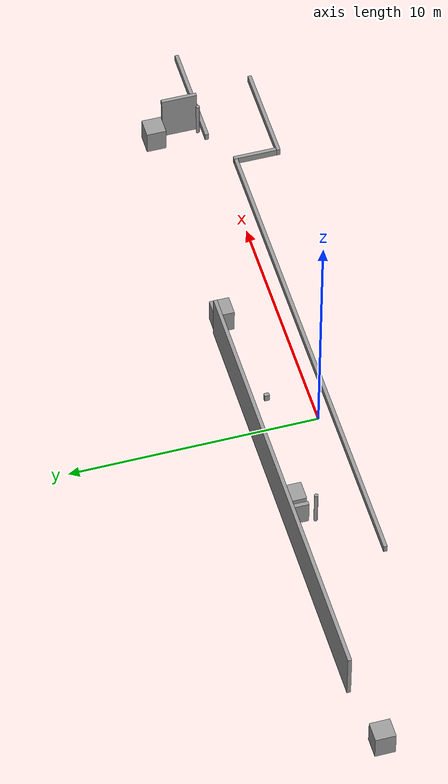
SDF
<sdf version="1.6">
 <model name="unit_box_map12">
  <link name="link">
   <pose>3.45997 -0.623895 0 0 -0 0</pose>
   <inertial>
    <mass>1</mass>
    <inertia>
     <ixx>0.166667</ixx>
     <ixy>0</ixy>
     <ixz>0</ixz>
     <iyy>0.166667</iyy>
     <iyz>0</iyz>
     <izz>0.166667</izz>
    </inertia>
   </inertial>
   <visual name="visual">
    <geometry><box><size>20.4 0.15 0.3</size></box></geometry>
    <material>
     <script><name>Gazebo/Grey</name><uri>file://media/materials/scripts/gazebo.material</uri></script>
     <ambient>0.3 0.3 0.3 1</ambient>
     <diffuse>0.7 0.7 0.7 1</diffuse>
     <specular>0.01 0.01 0.01 1</specular>
     <emissive>0 0 0 1</emissive>
     <shader type="vertex"><normal_map>__default__</normal_map></shader>
    </material>
   </visual>
   <collision name="collision">
    <geometry><box><size>20.4 0.15 0.3</size></box></geometry>
    <surface>
     <friction>
      <ode><mu>1</mu><mu2>1</mu2><fdir1>0 0 0</fdir1><slip1>0</slip1><slip2>0</slip2></ode>
      <torsional>
       <coefficient>1</coefficient>
       <patch_radius>0</patch_radius>
       <surface_radius>0</surface_radius>
       <use_patch_radius>1</use_patch_radius>
       <ode><slip>0</slip></ode>
      </torsional>
     </friction>
     <bounce><restitution_coefficient>0</restitution_coefficient><threshold>1e+06</threshold></bounce>
     <contact>
      <collide_without_contact>0</collide_without_contact>
      <collide_without_contact_bitmask>1</collide_without_contact_bitmask>
      <collide_bitmask>1</collide_bitmask>
      <ode>
       <soft_cfm>0</soft_cfm>
       <soft_erp>0.2</soft_erp>
       <kp>1e+13</kp>
       <kd>1</kd>
       <max_vel>0.01</max_vel>
       <min_depth>0</min_depth>
      </ode>
      <bullet>
       <split_impulse>1</split_impulse>
       <split_impulse_penetration_threshold>-0.01</split_impulse_penetration_threshold>
       <soft_cfm>0</soft_cfm>
       <soft_erp>0.2</soft_erp>
       <kp>1e+13</kp>
       <kd>1</kd>
      </bullet>
     </contact>
    </surface>
   </collision>
  </link>
  <link name="link_1">
   <pose>5.64225 2.27249 0.5 0 -0 0</pose>
   <inertial>
    <mass>1</mass>
    <inertia>
     <ixx>0.166667</ixx>
     <ixy>0</ixy>
     <ixz>0</ixz>
     <iyy>0.166667</iyy>
     <iyz>0</iyz>
     <izz>0.166667</izz>
    </inertia>
   </inertial>
   <visual name="visual">
    <geometry><box><size>0.8 0.8 1</size></box></geometry>
    <material>
     <lighting>1</lighting>
     <script><uri>file://media/materials/scripts/gazebo.material</uri><name>Gazebo/Grey</name></script>
     <ambient>0.3 0.3 0.3 1</ambient>
     <diffuse>0.7 0.7 0.7 1</diffuse>
     <specular>0.01 0.01 0.01 1</specular>
     <emissive>0 0 0 1</emissive>
     <shader type="vertex"><normal_map>__default__</normal_map></shader>
    </material>
   </visual>
   <collision name="collision">
    <geometry><box><size>0.8 0.8 1</size></box></geometry>
    <surface>
     <friction>
      <ode><mu>1</mu><mu2>1</mu2><fdir1>0 0 0</fdir1><slip1>0</slip1><slip2>0</slip2></ode>
      <torsional>
       <coefficient>1</coefficient>
       <patch_radius>0</patch_radius>
       <surface_radius>0</surface_radius>
       <use_patch_radius>1</use_patch_radius>
       <ode><slip>0</slip></ode>
      </torsional>
     </friction>
     <bounce><restitution_coefficient>0</restitution_coefficient><threshold>1e+06</threshold></bounce>
     <contact>
      <collide_without_contact>0</collide_without_contact>
      <collide_without_contact_bitmask>1</collide_without_contact_bitmask>
      <collide_bitmask>1</collide_bitmask>
      <ode>
       <soft_cfm>0</soft_cfm>
       <soft_erp>0.2</soft_erp>
       <kp>1e+13</kp>
       <kd>1</kd>
       <max_vel>0.01</max_vel>
       <min_depth>0</min_depth>
      </ode>
      <bullet>
       <split_impulse>1</split_impulse>
       <split_impulse_penetration_threshold>-0.01</split_impulse_penetration_threshold>
       <soft_cfm>0</soft_cfm>
       <soft_erp>0.2</soft_erp>
       <kp>1e+13</kp>
       <kd>1</kd>
      </bullet>
     </contact>
    </surface>
   </collision>
  </link>
  <link name="link_1_clone">
   <pose>-3.92858 2.1759 0.5 0 -0 0</pose>
   <inertial>
    <mass>1</mass>
    <inertia>
     <ixx>0.166667</ixx>
     <ixy>0</ixy>
     <ixz>0</ixz>
     <iyy>0.166667</iyy>
     <iyz>0</iyz>
     <izz>0.166667</izz>
    </inertia>
   </inertial>
   <visual name="visual">
    <geometry><box><size>0.8 0.8 1</size></box></geometry>
    <material>
     <lighting>1</lighting>
     <script><uri>file://media/materials/scripts/gazebo.material</uri><name>Gazebo/Grey</name></script>
     <ambient>0.3 0.3 0.3 1</ambient>
     <diffuse>0.7 0.7 0.7 1</diffuse>
     <specular>0.01 0.01 0.01 1</specular>
     <emissive>0 0 0 1</emissive>
     <shader type="vertex"><normal_map>__default__</normal_map></shader>
    </material>
   </visual>
   <collision name="collision">
    <geometry><box><size>0.8 0.8 1</size></box></geometry>
    <surface>
     <friction>
      <ode><mu>1</mu><mu2>1</mu2><fdir1>0 0 0</fdir1><slip1>0</slip1><slip2>0</slip2></ode>
      <torsional>
       <coefficient>1</coefficient>
       <patch_radius>0</patch_radius>
       <surface_radius>0</surface_radius>
       <use_patch_radius>1</use_patch_radius>
       <ode><slip>0</slip></ode>
      </torsional>
     </friction>
     <bounce><restitution_coefficient>0</restitution_coefficient><threshold>1e+06</threshold></bounce>
     <contact>
      <collide_without_contact>0</collide_without_contact>
      <collide_without_contact_bitmask>1</collide_without_contact_bitmask>
      <collide_bitmask>1</collide_bitmask>
      <ode>
       <soft_cfm>0</soft_cfm>
       <soft_erp>0.2</soft_erp>
       <kp>1e+13</kp>
       <kd>1</kd>
       <max_vel>0.01</max_vel>
       <min_depth>0</min_depth>
      </ode>
      <bullet>
       <split_impulse>1</split_impulse>
       <split_impulse_penetration_threshold>-0.01</split_impulse_penetration_threshold>
       <soft_cfm>0</soft_cfm>
       <soft_erp>0.2</soft_erp>
       <kp>1e+13</kp>
       <kd>1</kd>
      </bullet>
     </contact>
    </surface>
   </collision>
  </link>
  <link name="link_1_clone_0_clone">
   <pose>15.5381 2.27815 0.5 0 -0 0</pose>
   <inertial>
    <mass>1</mass>
    <inertia>
     <ixx>0.166667</ixx>
     <ixy>0</ixy>
     <ixz>0</ixz>
     <iyy>0.166667</iyy>
     <iyz>0</iyz>
     <izz>0.166667</izz>
    </inertia>
   </inertial>
   <visual name="visual">
    <geometry><box><size>0.8 0.8 1</size></box></geometry>
    <material>
     <lighting>1</lighting>
     <script><uri>file://media/materials/scripts/gazebo.material</uri><name>Gazebo/Grey</name></script>
     <ambient>0.3 0.3 0.3 1</ambient>
     <diffuse>0.7 0.7 0.7 1</diffuse>
     <specular>0.01 0.01 0.01 1</specular>
     <emissive>0 0 0 1</emissive>
     <shader type="vertex"><normal_map>__default__</normal_map></shader>
    </material>
   </visual>
   <collision name="collision">
    <geometry><box><size>0.8 0.8 1</size></box></geometry>
    <surface>
     <friction>
      <ode><mu>1</mu><mu2>1</mu2><fdir1>0 0 0</fdir1><slip1>0</slip1><slip2>0</slip2></ode>
      <torsional>
       <coefficient>1</coefficient>
       <patch_radius>0</patch_radius>
       <surface_radius>0</surface_radius>
       <use_patch_radius>1</use_patch_radius>
       <ode><slip>0</slip></ode>
      </torsional>
     </friction>
     <bounce><restitution_coefficient>0</restitution_coefficient><threshold>1e+06</threshold></bounce>
     <contact>
      <collide_without_contact>0</collide_without_contact>
      <collide_without_contact_bitmask>1</collide_without_contact_bitmask>
      <collide_bitmask>1</collide_bitmask>
      <ode>
       <soft_cfm>0</soft_cfm>
       <soft_erp>0.2</soft_erp>
       <kp>1e+13</kp>
       <kd>1</kd>
       <max_vel>0.01</max_vel>
       <min_depth>0</min_depth>
      </ode>
      <bullet>
       <split_impulse>1</split_impulse>
       <split_impulse_penetration_threshold>-0.01</split_impulse_penetration_threshold>
       <soft_cfm>0</soft_cfm>
       <soft_erp>0.2</soft_erp>
       <kp>1e+13</kp>
       <kd>1</kd>
      </bullet>
     </contact>
    </surface>
   </collision>
  </link>
  <link name="link_1_clone_clone">
   <pose>-4.56641 2.17851 0.5 0 -0 0</pose>
   <inertial>
    <mass>0.216254</mass>
    <inertia>
     <ixx>0.0360423</ixx>
     <ixy>0</ixy>
     <ixz>0</ixz>
     <iyy>0.0188639</iyy>
     <iyz>0</iyz>
     <izz>0.0188639</izz>
    </inertia>
   </inertial>
   <visual name="visual">
    <geometry><box><size>0.173004 0.8 1</size></box></geometry>
    <material>
     <lighting>1</lighting>
     <script><uri>file://media/materials/scripts/gazebo.material</uri><name>Gazebo/Grey</name></script>
     <ambient>0.3 0.3 0.3 1</ambient>
     <diffuse>0.7 0.7 0.7 1</diffuse>
     <specular>0.01 0.01 0.01 1</specular>
     <emissive>0 0 0 1</emissive>
     <shader type="vertex"><normal_map>__default__</normal_map></shader>
    </material>
   </visual>
   <collision name="collision">
    <geometry><box><size>0.173004 0.8 1</size></box></geometry>
    <surface>
     <friction>
      <ode><mu>1</mu><mu2>1</mu2><fdir1>0 0 0</fdir1><slip1>0</slip1><slip2>0</slip2></ode>
      <torsional>
       <coefficient>1</coefficient>
       <patch_radius>0</patch_radius>
       <surface_radius>0</surface_radius>
       <use_patch_radius>1</use_patch_radius>
       <ode><slip>0</slip></ode>
      </torsional>
     </friction>
     <bounce><restitution_coefficient>0</restitution_coefficient><threshold>1e+06</threshold></bounce>
     <contact>
      <collide_without_contact>0</collide_without_contact>
      <collide_without_contact_bitmask>1</collide_without_contact_bitmask>
      <collide_bitmask>1</collide_bitmask>
      <ode>
       <soft_cfm>0</soft_cfm>
       <soft_erp>0.2</soft_erp>
       <kp>1e+13</kp>
       <kd>1</kd>
       <max_vel>0.01</max_vel>
       <min_depth>0</min_depth>
      </ode>
      <bullet>
       <split_impulse>1</split_impulse>
       <split_impulse_penetration_threshold>-0.01</split_impulse_penetration_threshold>
       <soft_cfm>0</soft_cfm>
       <soft_erp>0.2</soft_erp>
       <kp>1e+13</kp>
       <kd>1</kd>
      </bullet>
     </contact>
    </surface>
   </collision>
  </link>
  <link name="link_1_clone_clone_0">
   <pose>-15.389 2.17694 0.5 0 -0 0</pose>
   <inertial>
    <mass>1</mass>
    <inertia>
     <ixx>0.166667</ixx>
     <ixy>0</ixy>
     <ixz>0</ixz>
     <iyy>0.166667</iyy>
     <iyz>0</iyz>
     <izz>0.166667</izz>
    </inertia>
   </inertial>
   <visual name="visual">
    <geometry><box><size>0.8 0.8 1</size></box></geometry>
    <material>
     <lighting>1</lighting>
     <script><uri>file://media/materials/scripts/gazebo.material</uri><name>Gazebo/Grey</name></script>
     <ambient>0.3 0.3 0.3 1</ambient>
     <diffuse>0.7 0.7 0.7 1</diffuse>
     <specular>0.01 0.01 0.01 1</specular>
     <emissive>0 0 0 1</emissive>
     <shader type="vertex"><normal_map>__default__</normal_map></shader>
    </material>
   </visual>
   <collision name="collision">
    <geometry><box><size>0.8 0.8 1</size></box></geometry>
    <surface>
     <friction>
      <ode><mu>1</mu><mu2>1</mu2><fdir1>0 0 0</fdir1><slip1>0</slip1><slip2>0</slip2></ode>
      <torsional>
       <coefficient>1</coefficient>
       <patch_radius>0</patch_radius>
       <surface_radius>0</surface_radius>
       <use_patch_radius>1</use_patch_radius>
       <ode><slip>0</slip></ode>
      </torsional>
     </friction>
     <bounce><restitution_coefficient>0</restitution_coefficient><threshold>1e+06</threshold></bounce>
     <contact>
      <collide_without_contact>0</collide_without_contact>
      <collide_without_contact_bitmask>1</collide_without_contact_bitmask>
      <collide_bitmask>1</collide_bitmask>
      <ode>
       <soft_cfm>0</soft_cfm>
       <soft_erp>0.2</soft_erp>
       <kp>1e+13</kp>
       <kd>1</kd>
       <max_vel>0.01</max_vel>
       <min_depth>0</min_depth>
      </ode>
      <bullet>
       <split_impulse>1</split_impulse>
       <split_impulse_penetration_threshold>-0.01</split_impulse_penetration_threshold>
       <soft_cfm>0</soft_cfm>
       <soft_erp>0.2</soft_erp>
       <kp>1e+13</kp>
       <kd>1</kd>
      </bullet>
     </contact>
    </surface>
   </collision>
  </link>
  <link name="link_2">
   <pose>-4.67409 1.51565 0.7539 0 -0 0</pose>
   <inertial>
    <mass>1</mass>
    <inertia><ixx>0.145833</ixx><ixy>0</ixy><ixz>0</ixz><iyy>0.145833</iyy><iyz>0</iyz><izz>0.125</izz></inertia>
   </inertial>
   <visual name="visual">
    <geometry><cylinder><radius>0.075</radius><length>1.5</length></cylinder></geometry>
    <material>
     <lighting>1</lighting>
     <script><uri>file://media/materials/scripts/gazebo.material</uri><name>Gazebo/Grey</name></script>
     <ambient>0.3 0.3 0.3 1</ambient>
     <diffuse>0.7 0.7 0.7 1</diffuse>
     <specular>0.01 0.01 0.01 1</specular>
     <emissive>0 0 0 1</emissive>
     <shader type="vertex"><normal_map>__default__</normal_map></shader>
    </material>
   </visual>
   <collision name="collision">
    <geometry><cylinder><radius>0.075</radius><length>1.5</length></cylinder></geometry>
    <surface>
     <friction>
      <ode><mu>1</mu><mu2>1</mu2><fdir1>0 0 0</fdir1><slip1>0</slip1><slip2>0</slip2></ode>
      <torsional>
       <coefficient>1</coefficient>
       <patch_radius>0</patch_radius>
       <surface_radius>0</surface_radius>
       <use_patch_radius>1</use_patch_radius>
       <ode><slip>0</slip></ode>
      </torsional>
     </friction>
     <bounce><restitution_coefficient>0</restitution_coefficient><threshold>1e+06</threshold></bounce>
     <contact>
      <collide_without_contact>0</collide_without_contact>
      <collide_without_contact_bitmask>1</collide_without_contact_bitmask>
      <collide_bitmask>1</collide_bitmask>
      <ode>
       <soft_cfm>0</soft_cfm>
       <soft_erp>0.2</soft_erp>
       <kp>1e+13</kp>
       <kd>1</kd>
       <max_vel>0.01</max_vel>
       <min_depth>0</min_depth>
      </ode>
      <bullet>
       <split_impulse>1</split_impulse>
       <split_impulse_penetration_threshold>-0.01</split_impulse_penetration_threshold>
       <soft_cfm>0</soft_cfm>
       <soft_erp>0.2</soft_erp>
       <kp>1e+13</kp>
       <kd>1</kd>
      </bullet>
     </contact>
    </surface>
   </collision>
  </link>
  <link name="link_2_clone_clone">
   <pose>16.0812 0.409793 0.7539 0 -0 0</pose>
   <inertial>
    <mass>1</mass>
    <inertia><ixx>0.145833</ixx><ixy>0</ixy><ixz>0</ixz><iyy>0.145833</iyy><iyz>0</iyz><izz>0.125</izz></inertia>
   </inertial>
   <visual name="visual">
    <geometry><cylinder><radius>0.075</radius><length>1.5</length></cylinder></geometry>
    <material>
     <lighting>1</lighting>
     <script><uri>file://media/materials/scripts/gazebo.material</uri><name>Gazebo/Grey</name></script>
     <ambient>0.3 0.3 0.3 1</ambient>
     <diffuse>0.7 0.7 0.7 1</diffuse>
     <specular>0.01 0.01 0.01 1</specular>
     <emissive>0 0 0 1</emissive>
     <shader type="vertex"><normal_map>__default__</normal_map></shader>
    </material>
   </visual>
   <collision name="collision">
    <geometry><cylinder><radius>0.075</radius><length>1.5</length></cylinder></geometry>
    <surface>
     <friction>
      <ode><mu>1</mu><mu2>1</mu2><fdir1>0 0 0</fdir1><slip1>0</slip1><slip2>0</slip2></ode>
      <torsional>
       <coefficient>1</coefficient>
       <patch_radius>0</patch_radius>
       <surface_radius>0</surface_radius>
       <use_patch_radius>1</use_patch_radius>
       <ode><slip>0</slip></ode>
      </torsional>
     </friction>
     <bounce><restitution_coefficient>0</restitution_coefficient><threshold>1e+06</threshold></bounce>
     <contact>
      <collide_without_contact>0</collide_without_contact>
      <collide_without_contact_bitmask>1</collide_without_contact_bitmask>
      <collide_bitmask>1</collide_bitmask>
      <ode>
       <soft_cfm>0</soft_cfm>
       <soft_erp>0.2</soft_erp>
       <kp>1e+13</kp>
       <kd>1</kd>
       <max_vel>0.01</max_vel>
       <min_depth>0</min_depth>
      </ode>
      <bullet>
       <split_impulse>1</split_impulse>
       <split_impulse_penetration_threshold>-0.01</split_impulse_penetration_threshold>
       <soft_cfm>0</soft_cfm>
       <soft_erp>0.2</soft_erp>
       <kp>1e+13</kp>
       <kd>1</kd>
      </bullet>
     </contact>
    </surface>
   </collision>
  </link>
  <link name="link_2_clone_clone_0">
   <pose>15.6338 0.415175 0.7539 0 -0 0</pose>
   <inertial>
    <mass>1</mass>
    <inertia><ixx>0.145833</ixx><ixy>0</ixy><ixz>0</ixz><iyy>0.145833</iyy><iyz>0</iyz><izz>0.125</izz></inertia>
   </inertial>
   <visual name="visual">
    <geometry><cylinder><radius>0.075</radius><length>1.5</length></cylinder></geometry>
    <material>
     <lighting>1</lighting>
     <script><uri>file://media/materials/scripts/gazebo.material</uri><name>Gazebo/Grey</name></script>
     <ambient>0.3 0.3 0.3 1</ambient>
     <diffuse>0.7 0.7 0.7 1</diffuse>
     <specular>0.01 0.01 0.01 1</specular>
     <emissive>0 0 0 1</emissive>
     <shader type="vertex"><normal_map>__default__</normal_map></shader>
    </material>
   </visual>
   <collision name="collision">
    <geometry><cylinder><radius>0.075</radius><length>1.5</length></cylinder></geometry>
    <surface>
     <friction>
      <ode><mu>1</mu><mu2>1</mu2><fdir1>0 0 0</fdir1><slip1>0</slip1><slip2>0</slip2></ode>
      <torsional>
       <coefficient>1</coefficient>
       <patch_radius>0</patch_radius>
       <surface_radius>0</surface_radius>
       <use_patch_radius>1</use_patch_radius>
       <ode><slip>0</slip></ode>
      </torsional>
     </friction>
     <bounce><restitution_coefficient>0</restitution_coefficient><threshold>1e+06</threshold></bounce>
     <contact>
      <collide_without_contact>0</collide_without_contact>
      <collide_without_contact_bitmask>1</collide_without_contact_bitmask>
      <collide_bitmask>1</collide_bitmask>
      <ode>
       <soft_cfm>0</soft_cfm>
       <soft_erp>0.2</soft_erp>
       <kp>1e+13</kp>
       <kd>1</kd>
       <max_vel>0.01</max_vel>
       <min_depth>0</min_depth>
      </ode>
      <bullet>
       <split_impulse>1</split_impulse>
       <split_impulse_penetration_threshold>-0.01</split_impulse_penetration_threshold>
       <soft_cfm>0</soft_cfm>
       <soft_erp>0.2</soft_erp>
       <kp>1e+13</kp>
       <kd>1</kd>
      </bullet>
     </contact>
    </surface>
   </collision>
  </link>
  <link name="link_clone">
   <pose>-3.76019 2.65371 0.997263 0 -0 0</pose>
   <inertial>
    <mass>1</mass>
    <inertia>
     <ixx>0.166667</ixx>
     <ixy>0</ixy>
     <ixz>0</ixz>
     <iyy>0.166667</iyy>
     <iyz>0</iyz>
     <izz>0.166667</izz>
    </inertia>
   </inertial>
   <visual name="visual">
    <geometry><box><size>18 0.15 2</size></box></geometry>
    <material>
     <script><name>Gazebo/Grey</name><uri>file://media/materials/scripts/gazebo.material</uri></script>
     <ambient>0.3 0.3 0.3 1</ambient>
     <diffuse>0.7 0.7 0.7 1</diffuse>
     <specular>0.01 0.01 0.01 1</specular>
     <emissive>0 0 0 1</emissive>
     <shader type="vertex"><normal_map>__default__</normal_map></shader>
    </material>
   </visual>
   <collision name="collision">
    <geometry><box><size>18 0.15 2</size></box></geometry>
    <surface>
     <friction>
      <ode><mu>1</mu><mu2>1</mu2><fdir1>0 0 0</fdir1><slip1>0</slip1><slip2>0</slip2></ode>
      <torsional>
       <coefficient>1</coefficient>
       <patch_radius>0</patch_radius>
       <surface_radius>0</surface_radius>
       <use_patch_radius>1</use_patch_radius>
       <ode><slip>0</slip></ode>
      </torsional>
     </friction>
     <bounce><restitution_coefficient>0</restitution_coefficient><threshold>1e+06</threshold></bounce>
     <contact>
      <collide_without_contact>0</collide_without_contact>
      <collide_without_contact_bitmask>1</collide_without_contact_bitmask>
      <collide_bitmask>1</collide_bitmask>
      <ode>
       <soft_cfm>0</soft_cfm>
       <soft_erp>0.2</soft_erp>
       <kp>1e+13</kp>
       <kd>1</kd>
       <max_vel>0.01</max_vel>
       <min_depth>0</min_depth>
      </ode>
      <bullet>
       <split_impulse>1</split_impulse>
       <split_impulse_penetration_threshold>-0.01</split_impulse_penetration_threshold>
       <soft_cfm>0</soft_cfm>
       <soft_erp>0.2</soft_erp>
       <kp>1e+13</kp>
       <kd>1</kd>
      </bullet>
     </contact>
    </surface>
   </collision>
  </link>
  <link name="link_clone_0_clone">
   <pose>1.60516 1.62127 0 0 -0 1.5707</pose>
   <inertial>
    <mass>1</mass>
    <inertia>
     <ixx>0.166667</ixx>
     <ixy>0</ixy>
     <ixz>0</ixz>
     <iyy>0.166667</iyy>
     <iyz>0</iyz>
     <izz>0.166667</izz>
    </inertia>
   </inertial>
   <visual name="visual">
    <geometry><box><size>0.2 0.15 0.3</size></box></geometry>
    <material>
     <script><name>Gazebo/Grey</name><uri>file://media/materials/scripts/gazebo.material</uri></script>
     <ambient>0.3 0.3 0.3 1</ambient>
     <diffuse>0.7 0.7 0.7 1</diffuse>
     <specular>0.01 0.01 0.01 1</specular>
     <emissive>0 0 0 1</emissive>
     <shader type="vertex"><normal_map>__default__</normal_map></shader>
    </material>
   </visual>
   <collision name="collision">
    <geometry><box><size>0.2 0.15 0.3</size></box></geometry>
    <surface>
     <friction>
      <ode><mu>1</mu><mu2>1</mu2><fdir1>0 0 0</fdir1><slip1>0</slip1><slip2>0</slip2></ode>
      <torsional>
       <coefficient>1</coefficient>
       <patch_radius>0</patch_radius>
       <surface_radius>0</surface_radius>
       <use_patch_radius>1</use_patch_radius>
       <ode><slip>0</slip></ode>
      </torsional>
     </friction>
     <bounce><restitution_coefficient>0</restitution_coefficient><threshold>1e+06</threshold></bounce>
     <contact>
      <collide_without_contact>0</collide_without_contact>
      <collide_without_contact_bitmask>1</collide_without_contact_bitmask>
      <collide_bitmask>1</collide_bitmask>
      <ode>
       <soft_cfm>0</soft_cfm>
       <soft_erp>0.2</soft_erp>
       <kp>1e+13</kp>
       <kd>1</kd>
       <max_vel>0.01</max_vel>
       <min_depth>0</min_depth>
      </ode>
      <bullet>
       <split_impulse>1</split_impulse>
       <split_impulse_penetration_threshold>-0.01</split_impulse_penetration_threshold>
       <soft_cfm>0</soft_cfm>
       <soft_erp>0.2</soft_erp>
       <kp>1e+13</kp>
       <kd>1</kd>
      </bullet>
     </contact>
    </surface>
   </collision>
  </link>
  <link name="link_clone_0_clone_0_clone_clone">
   <pose>15.7693 -2.40821 0 0 -0 0</pose>
   <inertial>
    <mass>1</mass>
    <inertia>
     <ixx>0.166667</ixx>
     <ixy>0</ixy>
     <ixz>0</ixz>
     <iyy>0.166667</iyy>
     <iyz>0</iyz>
     <izz>0.166667</izz>
    </inertia>
   </inertial>
   <visual name="visual">
    <geometry><box><size>4.21 0.15 0.3</size></box></geometry>
    <material>
     <script><name>Gazebo/Grey</name><uri>file://media/materials/scripts/gazebo.material</uri></script>
     <ambient>0.3 0.3 0.3 1</ambient>
     <diffuse>0.7 0.7 0.7 1</diffuse>
     <specular>0.01 0.01 0.01 1</specular>
     <emissive>0 0 0 1</emissive>
     <shader type="vertex"><normal_map>__default__</normal_map></shader>
    </material>
   </visual>
   <collision name="collision">
    <geometry><box><size>4.21 0.15 0.3</size></box></geometry>
    <surface>
     <friction>
      <ode><mu>1</mu><mu2>1</mu2><fdir1>0 0 0</fdir1><slip1>0</slip1><slip2>0</slip2></ode>
      <torsional>
       <coefficient>1</coefficient>
       <patch_radius>0</patch_radius>
       <surface_radius>0</surface_radius>
       <use_patch_radius>1</use_patch_radius>
       <ode><slip>0</slip></ode>
      </torsional>
     </friction>
     <bounce><restitution_coefficient>0</restitution_coefficient><threshold>1e+06</threshold></bounce>
     <contact>
      <collide_without_contact>0</collide_without_contact>
      <collide_without_contact_bitmask>1</collide_without_contact_bitmask>
      <collide_bitmask>1</collide_bitmask>
      <ode>
       <soft_cfm>0</soft_cfm>
       <soft_erp>0.2</soft_erp>
       <kp>1e+13</kp>
       <kd>1</kd>
       <max_vel>0.01</max_vel>
       <min_depth>0</min_depth>
      </ode>
      <bullet>
       <split_impulse>1</split_impulse>
       <split_impulse_penetration_threshold>-0.01</split_impulse_penetration_threshold>
       <soft_cfm>0</soft_cfm>
       <soft_erp>0.2</soft_erp>
       <kp>1e+13</kp>
       <kd>1</kd>
      </bullet>
     </contact>
    </surface>
   </collision>
  </link>
  <link name="link_clone_0_clone_0_clone_clone_clone">
   <pose>17.5173 0.14167 0 0 -0 0</pose>
   <inertial>
    <mass>0.716393</mass>
    <inertia>
     <ixx>0.119399</ixx>
     <ixy>0</ixy>
     <ixz>0</ixz>
     <iyy>0.0903386</iyy>
     <iyz>0</iyz>
     <izz>0.0903386</izz>
    </inertia>
   </inertial>
   <visual name="visual">
    <geometry><box><size>4.53477 0.15 0.3</size></box></geometry>
    <material>
     <script><name>Gazebo/Grey</name><uri>file://media/materials/scripts/gazebo.material</uri></script>
     <ambient>0.3 0.3 0.3 1</ambient>
     <diffuse>0.7 0.7 0.7 1</diffuse>
     <specular>0.01 0.01 0.01 1</specular>
     <emissive>0 0 0 1</emissive>
     <shader type="vertex"><normal_map>__default__</normal_map></shader>
    </material>
   </visual>
   <collision name="collision">
    <geometry><box><size>4.53477 0.15 0.3</size></box></geometry>
    <surface>
     <friction>
      <ode><mu>1</mu><mu2>1</mu2><fdir1>0 0 0</fdir1><slip1>0</slip1><slip2>0</slip2></ode>
      <torsional>
       <coefficient>1</coefficient>
       <patch_radius>0</patch_radius>
       <surface_radius>0</surface_radius>
       <use_patch_radius>1</use_patch_radius>
       <ode><slip>0</slip></ode>
      </torsional>
     </friction>
     <bounce><restitution_coefficient>0</restitution_coefficient><threshold>1e+06</threshold></bounce>
     <contact>
      <collide_without_contact>0</collide_without_contact>
      <collide_without_contact_bitmask>1</collide_without_contact_bitmask>
      <collide_bitmask>1</collide_bitmask>
      <ode>
       <soft_cfm>0</soft_cfm>
       <soft_erp>0.2</soft_erp>
       <kp>1e+13</kp>
       <kd>1</kd>
       <max_vel>0.01</max_vel>
       <min_depth>0</min_depth>
      </ode>
      <bullet>
       <split_impulse>1</split_impulse>
       <split_impulse_penetration_threshold>-0.01</split_impulse_penetration_threshold>
       <soft_cfm>0</soft_cfm>
       <soft_erp>0.2</soft_erp>
       <kp>1e+13</kp>
       <kd>1</kd>
      </bullet>
     </contact>
    </surface>
   </collision>
  </link>
  <link name="link_clone_0_clone_clone_0">
   <pose>15.8605 1.14267 1.00786 0 -0 1.5707</pose>
   <inertial>
    <mass>1</mass>
    <inertia>
     <ixx>0.166667</ixx>
     <ixy>0</ixy>
     <ixz>0</ixz>
     <iyy>0.166667</iyy>
     <iyz>0</iyz>
     <izz>0.166667</izz>
    </inertia>
   </inertial>
   <visual name="visual">
    <geometry><box><size>1.45 0.15 2</size></box></geometry>
    <material>
     <script><name>Gazebo/Grey</name><uri>file://media/materials/scripts/gazebo.material</uri></script>
     <ambient>0.3 0.3 0.3 1</ambient>
     <diffuse>0.7 0.7 0.7 1</diffuse>
     <specular>0.01 0.01 0.01 1</specular>
     <emissive>0 0 0 1</emissive>
     <shader type="vertex"><normal_map>__default__</normal_map></shader>
    </material>
   </visual>
   <collision name="collision">
    <geometry><box><size>1.45 0.15 2</size></box></geometry>
    <surface>
     <friction>
      <ode><mu>1</mu><mu2>1</mu2><fdir1>0 0 0</fdir1><slip1>0</slip1><slip2>0</slip2></ode>
      <torsional>
       <coefficient>1</coefficient>
       <patch_radius>0</patch_radius>
       <surface_radius>0</surface_radius>
       <use_patch_radius>1</use_patch_radius>
       <ode><slip>0</slip></ode>
      </torsional>
     </friction>
     <bounce><restitution_coefficient>0</restitution_coefficient><threshold>1e+06</threshold></bounce>
     <contact>
      <collide_without_contact>0</collide_without_contact>
      <collide_without_contact_bitmask>1</collide_without_contact_bitmask>
      <collide_bitmask>1</collide_bitmask>
      <ode>
       <soft_cfm>0</soft_cfm>
       <soft_erp>0.2</soft_erp>
       <kp>1e+13</kp>
       <kd>1</kd>
       <max_vel>0.01</max_vel>
       <min_depth>0</min_depth>
      </ode>
      <bullet>
       <split_impulse>1</split_impulse>
       <split_impulse_penetration_threshold>-0.01</split_impulse_penetration_threshold>
       <soft_cfm>0</soft_cfm>
       <soft_erp>0.2</soft_erp>
       <kp>1e+13</kp>
       <kd>1</kd>
      </bullet>
     </contact>
    </surface>
   </collision>
  </link>
  <link name="link_clone_0_clone_clone_0_clone">
   <pose>13.7445 -1.43771 0 0 -0 1.5707</pose>
   <inertial>
    <mass>1</mass>
    <inertia>
     <ixx>0.166667</ixx>
     <ixy>0</ixy>
     <ixz>0</ixz>
     <iyy>0.166667</iyy>
     <iyz>0</iyz>
     <izz>0.166667</izz>
    </inertia>
   </inertial>
   <visual name="visual">
    <geometry><box><size>1.78 0.15 0.3</size></box></geometry>
    <material>
     <script><name>Gazebo/Grey</name><uri>file://media/materials/scripts/gazebo.material</uri></script>
     <ambient>0.3 0.3 0.3 1</ambient>
     <diffuse>0.7 0.7 0.7 1</diffuse>
     <specular>0.01 0.01 0.01 1</specular>
     <emissive>0 0 0 1</emissive>
     <shader type="vertex"><normal_map>__default__</normal_map></shader>
    </material>
   </visual>
   <collision name="collision">
    <geometry><box><size>1.78 0.15 0.3</size></box></geometry>
    <surface>
     <friction>
      <ode><mu>1</mu><mu2>1</mu2><fdir1>0 0 0</fdir1><slip1>0</slip1><slip2>0</slip2></ode>
      <torsional>
       <coefficient>1</coefficient>
       <patch_radius>0</patch_radius>
       <surface_radius>0</surface_radius>
       <use_patch_radius>1</use_patch_radius>
       <ode><slip>0</slip></ode>
      </torsional>
     </friction>
     <bounce><restitution_coefficient>0</restitution_coefficient><threshold>1e+06</threshold></bounce>
     <contact>
      <collide_without_contact>0</collide_without_contact>
      <collide_without_contact_bitmask>1</collide_without_contact_bitmask>
      <collide_bitmask>1</collide_bitmask>
      <ode>
       <soft_cfm>0</soft_cfm>
       <soft_erp>0.2</soft_erp>
       <kp>1e+13</kp>
       <kd>1</kd>
       <max_vel>0.01</max_vel>
       <min_depth>0</min_depth>
      </ode>
      <bullet>
       <split_impulse>1</split_impulse>
       <split_impulse_penetration_threshold>-0.01</split_impulse_penetration_threshold>
       <soft_cfm>0</soft_cfm>
       <soft_erp>0.2</soft_erp>
       <kp>1e+13</kp>
       <kd>1</kd>
      </bullet>
     </contact>
    </surface>
   </collision>
  </link>
  <static>1</static>
  <allow_auto_disable>0</allow_auto_disable>
 </model>
</sdf>
